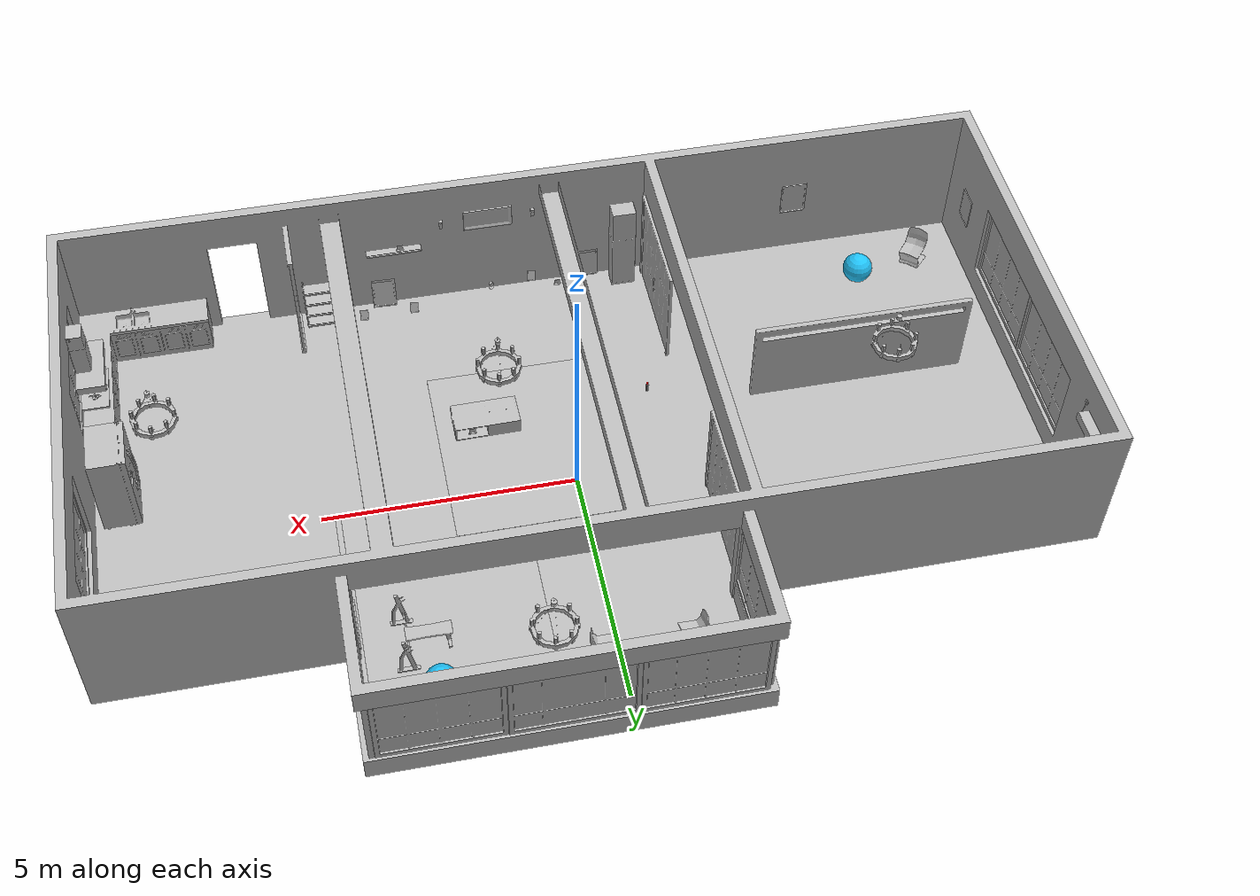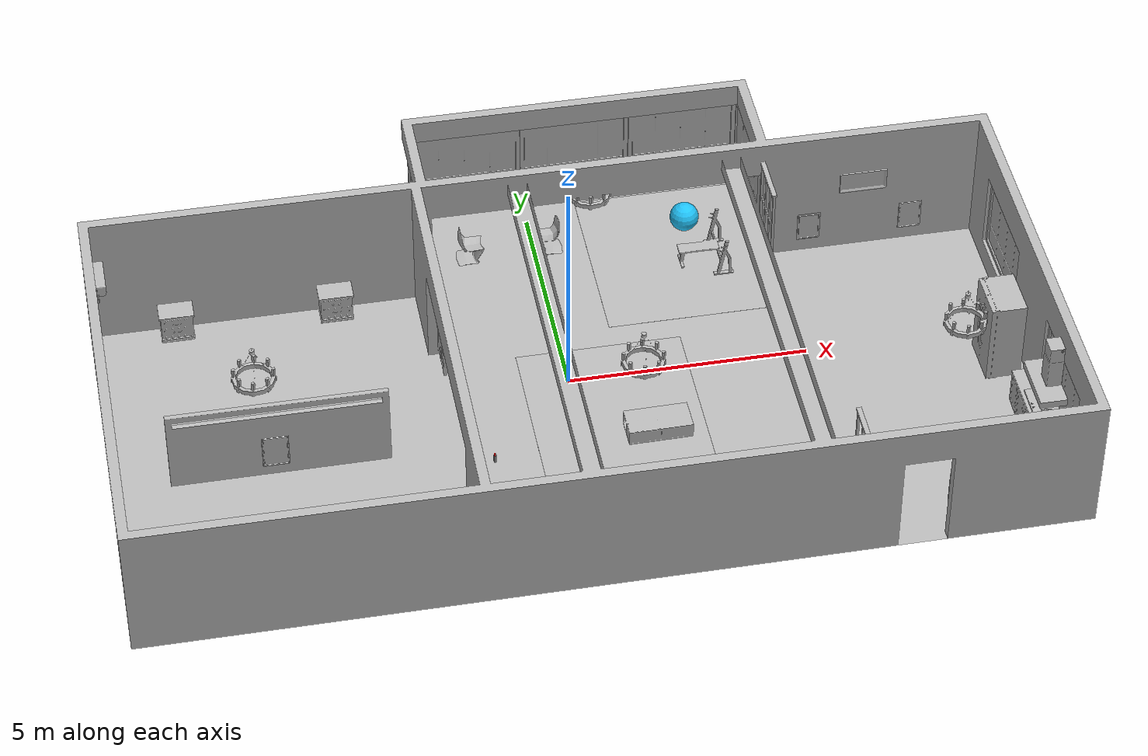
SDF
<sdf version="1.6">
 <world name="default">
  <plugin filename="gz-sim-physics-system" name="gz::sim::systems::Physics"/>
  <plugin filename="gz-sim-user-commands-system" name="gz::sim::systems::UserCommands"/>
  <plugin filename="gz-sim-scene-broadcaster-system" name="gz::sim::systems::SceneBroadcaster"/>
  <plugin filename="gz-sim-sensors-system" name="gz::sim::systems::Sensors">
   <render_engine>ogre2</render_engine>
  </plugin>
  <gravity>0 0 -9.8</gravity>
  <magnetic_field>6e-06 2.3e-05 -4.2e-05</magnetic_field>
  <atmosphere type="adiabatic"/>
  <physics name="default_physics" default="0" type="ode">
   <max_step_size>0.005</max_step_size>
   <real_time_factor>1</real_time_factor>
   <real_time_update_rate>200</real_time_update_rate>
  </physics>
  <scene>
   <ambient>0.4 0.4 0.4 1</ambient>
   <background>0.7 0.7 0.7 1</background>
   <shadows>false</shadows>
   <grid>false</grid>
   <origin_visual>false</origin_visual>
  </scene>
  <spherical_coordinates>
   <surface_model>EARTH_WGS84</surface_model>
   <latitude_deg>0</latitude_deg>
   <longitude_deg>0</longitude_deg>
   <elevation>0</elevation>
   <heading_deg>0</heading_deg>
  </spherical_coordinates>
  <include>
   <name>AirconditionerA_01_001</name>
   <static>true</static>
   <uri>model://aws_robomaker_residential_AirconditionerA_01</uri>
   <pose>-9.199410 2.411230 2.084544 0 -0 0</pose>
  </include>
  <include>
   <name>AirconditionerB_01_001</name>
   <static>true</static>
   <uri>model://aws_robomaker_residential_AirconditionerB_01</uri>
   <pose>-2.004656 -5.226610 0.003485 0 -0 0</pose>
  </include>
  <include>
   <name>Ball_01_001</name>
   <static>true</static>
   <uri>model://aws_robomaker_residential_Ball_01</uri>
   <pose>3.295503 4.225674 0.318684 0 -0 0</pose>
  </include>
  <include>
   <name>Ball_01_003</name>
   <static>true</static>
   <uri>model://aws_robomaker_residential_Ball_01</uri>
   <pose>-6.945503 -4.22174 0.318684 0 -0 0</pose>
  </include>
  <include>
   <name>NightStand_01_001</name>
   <static>true</static>
   <uri>model://aws_robomaker_residential_NightStand_01</uri>
   <pose>-7.725510 2.860420 0.005258 -0.000002 0 0</pose>
  </include>
  <include>
   <name>NightStand_01_002</name>
   <static>true</static>
   <uri>model://aws_robomaker_residential_NightStand_01</uri>
   <pose>-4.407341 2.860420 0.005256 0 0.000002 0</pose>
  </include>
  <include>
   <name>Board_01_001</name>
   <static>true</static>
   <uri>model://aws_robomaker_residential_Board_01</uri>
   <pose>2.779073 -5.392703 1.538173 0 -0 0</pose>
  </include>
  <include>
   <name>ChairD_01_001</name>
   <static>true</static>
   <uri>model://aws_robomaker_residential_ChairD_01</uri>
   <pose>-1.380775 4.104456 0 0 -0 0</pose>
  </include>
  <include>
   <name>ChairD_01_002</name>
   <static>true</static>
   <uri>model://aws_robomaker_residential_ChairD_01</uri>
   <pose>0.325214 4.104456 0 0 -0 -3.138741</pose>
  </include>
  <include>
   <name>ChairD_01_003</name>
   <static>true</static>
   <uri>model://aws_robomaker_residential_ChairD_01</uri>
   <pose>-8.270775 -4.504456 0 0 -0 0.869673</pose>
  </include>
  <include>
   <name>Chandelier_01_001</name>
   <static>true</static>
   <uri>model://aws_robomaker_residential_Chandelier_01</uri>
   <pose>1.221061 4.155740 1.295000 0 -0 0</pose>
  </include>
  <include>
   <name>Chandelier_01_002</name>
   <static>true</static>
   <uri>model://aws_robomaker_residential_Chandelier_01</uri>
   <pose>-6.451061 -0.692040 1.810000 0 -0 0</pose>
  </include>
  <include>
   <name>Chandelier_01_003</name>
   <static>true</static>
   <uri>model://aws_robomaker_residential_Chandelier_01</uri>
   <pose>7.824061 -1.59 1.7510000 0 -0 0</pose>
  </include>
  <include>
   <name>Chandelier_01_004</name>
   <static>true</static>
   <uri>model://aws_robomaker_residential_Chandelier_01</uri>
   <pose>1.221061 -1.592040 1.7873000 0 -0 0</pose>
  </include>
  <include>
   <name>Carpet_01_001</name>
   <static>true</static>
   <uri>model://aws_robomaker_residential_Carpet_01</uri>
   <pose>0.785050 -1.106647 0.001106 0 -0 0</pose>
  </include>
  <include>
   <name>Carpet_01_002</name>
   <static>true</static>
   <uri>model://aws_robomaker_residential_Carpet_01</uri>
   <pose>2.854050 3.45 0.000585 0 -0 0</pose>
  </include>
  <include>
   <name>SecurityCamera_01_001</name>
   <static>true</static>
   <uri>model://aws_robomaker_residential_SecurityCamera_01</uri>
   <pose>0.842134 -4.996294 0.495067 0 -0 -2.841039</pose>
  </include>
  <include>
   <name>CoffeeTable_01_001</name>
   <static>true</static>
   <uri>model://aws_robomaker_residential_CoffeeTable_01</uri>
   <pose>1.512301 -1.733438 0.041983 0.000000 0.000000 0.01000</pose>
  </include>
  <include>
   <name>CookingBench_01_001</name>
   <uri>model://aws_robomaker_residential_CookingBench_01</uri>
   <pose>9.038383 -3.351140 0.903610 0 -0 3.137133</pose>
   <static>true</static>
  </include>
  <include>
   <name>FitnessEquipment_01_001</name>
   <static>true</static>
   <uri>model://aws_robomaker_residential_FitnessEquipment_01</uri>
   <pose>3.484720 3.169104 0.003168 0 -0 0</pose>
  </include>
  <include>
   <name>FoldingDoor_01_001</name>
   <static>true</static>
   <uri>model://aws_robomaker_residential_FoldingDoor_01</uri>
   <pose>-2.461096 1.844219 0.041881 0 -0 0</pose>
  </include>
  <include>
   <name>FoldingDoor_01_002</name>
   <static>true</static>
   <uri>model://aws_robomaker_residential_FoldingDoor_01</uri>
   <pose>-2.461096 -4.053320 0.041881 0 -0 0</pose>
  </include>
  <include>
   <name>HouseWallB_01_001</name>
   <static>true</static>
   <uri>model://aws_robomaker_residential_HouseWallB_01</uri>
  </include>
  <include>
   <name>FloorB_01_001</name>
   <static>true</static>
   <uri>model://aws_robomaker_residential_FloorB_01</uri>
  </include>
  <include>
   <name>FoldingDoor_02_001</name>
   <static>true</static>
   <uri>model://aws_robomaker_residential_FoldingDoor_02</uri>
   <pose>4.674231 2.46451 0 0 -0 3.14159</pose>
  </include>
  <include>
   <name>FoldingDoor_02_002</name>
   <static>true</static>
   <uri>model://aws_robomaker_residential_FoldingDoor_02</uri>
   <pose>4.8912 -4.84968 0 0 -0 0</pose>
  </include>
  <include>
   <name>KitchenCabinet_01_001</name>
   <static>true</static>
   <uri>model://aws_robomaker_residential_KitchenCabinet_01</uri>
   <pose>8.002009 -3.836509 0.012068 0 -0 -3.140001</pose>
  </include>
  <include>
   <name>LightC_01_001</name>
   <static>true</static>
   <uri>model://aws_robomaker_residential_LightC_01</uri>
   <pose>1.769567 -5.4443710 2.000000 0 -0 0</pose>
  </include>
  <include>
   <name>LightC_01_002</name>
   <static>true</static>
   <uri>model://aws_robomaker_residential_LightC_01</uri>
   <pose>-0.138245 -5.4443710 2.000000 0 -0 0</pose>
  </include>
  <include>
   <name>PortraitA_01</name>
   <static>true</static>
   <uri>model://aws_robomaker_residential_PortraitA_01</uri>
   <pose>-2.712360 -4.817539 1.00000 0 -0 1.566796</pose>
  </include>
  <include>
   <name>PortraitB_01</name>
   <static>true</static>
   <uri>model://aws_robomaker_residential_PortraitB_01</uri>
   <pose>-1.279683 -5.429630 0.0 -0.076901 0 -3.116718</pose>
  </include>
  <include>
   <name>PortraitB_02</name>
   <static>true</static>
   <uri>model://aws_robomaker_residential_PortraitB_02</uri>
   <pose>5.737017 3.080310 0.300000 0 -0 0</pose>
  </include>
  <include>
   <name>PortraitB_03</name>
   <static>true</static>
   <uri>model://aws_robomaker_residential_PortraitB_03</uri>
   <pose>3.071380 -5.349366 0.005494 -0.168428 0.0 3.104232</pose>
  </include>
  <include>
   <name>PortraitA_02</name>
   <static>true</static>
   <uri>model://aws_robomaker_residential_PortraitA_02</uri>
   <pose>7.937017 3.080310 0.300000 0 -0 3.14</pose>
  </include>
  <include>
   <name>PortraitC_01</name>
   <static>true</static>
   <uri>model://aws_robomaker_residential_PortraitC_01</uri>
   <pose>-9.294904 -4.526084 1.000000 0 -0 1.554734</pose>
  </include>
  <include>
   <name>PortraitD_01</name>
   <static>true</static>
   <uri>model://aws_robomaker_residential_PortraitD_01</uri>
   <pose>0.789763 -5.478725 1.800000 0 -0 3.138531</pose>
  </include>
  <include>
   <name>PortraitD_02</name>
   <static>true</static>
   <uri>model://aws_robomaker_residential_PortraitD_02</uri>
   <pose>6.870181 3.080310 1.488439 0 -0 0</pose>
  </include>
  <include>
   <name>PortraitE_01</name>
   <static>true</static>
   <uri>model://aws_robomaker_residential_PortraitE_01</uri>
   <pose>-5.773094 -5.492466 1.000000 0 -0 3.132627</pose>
  </include>
  <include>
   <name>PortraitE_02</name>
   <static>true</static>
   <uri>model://aws_robomaker_residential_PortraitE_02</uri>
   <pose>-6.193025 -1.590208 0.3 0 -0 0.004290</pose>
  </include>
  <include>
   <name>DeskPortraitA_01</name>
   <static>true</static>
   <uri>model://aws_robomaker_residential_DeskPortraitA_01</uri>
   <pose>-0.036864 -5.110156 0.498660 0 -0 2.927784</pose>
  </include>
  <include>
   <name>DeskPortraitA_02</name>
   <static>true</static>
   <uri>model://aws_robomaker_residential_DeskPortraitA_02</uri>
   <pose>2.046082 -1.892926 0.0703880 -0.018328 -0.000441 1.576216</pose>
  </include>
  <include>
   <name>DeskPortraitD_01</name>
   <static>true</static>
   <uri>model://aws_robomaker_residential_DeskPortraitD_01</uri>
   <pose>2.645560 -5.376225 1.573738 0 -0 -3.112826</pose>
  </include>
  <include>
   <name>DeskPortraitD_02</name>
   <static>true</static>
   <uri>model://aws_robomaker_residential_DeskPortraitD_02</uri>
   <pose>-0.589211 -5.109890 0.192145 -0.000015 -0.000174 -3.112544</pose>
  </include>
  <include>
   <name>DeskPortraitD_03</name>
   <static>true</static>
   <uri>model://aws_robomaker_residential_DeskPortraitD_03</uri>
   <pose>1.826729 -1.464881 0.126208 0.000010 0.000006 -3.114380</pose>
  </include>
  <include>
   <name>DeskPortraitD_04</name>
   <static>true</static>
   <uri>model://aws_robomaker_residential_DeskPortraitD_04</uri>
   <pose>4.302132 -5.176568 0.202496 0.007118 -0.000001 3.046683</pose>
  </include>
  <include>
   <name>DeskPortraitB_01</name>
   <static>true</static>
   <uri>model://aws_robomaker_residential_DeskPortraitB_01</uri>
   <pose>3.547376 -5.083898 -0.012660 -0.336622 -0.000001 3.046741</pose>
  </include>
  <include>
   <name>DeskPortraitB_02</name>
   <static>true</static>
   <uri>model://aws_robomaker_residential_DeskPortraitB_02</uri>
   <pose>2.486270 -5.102525 -0.012660 -0.336621 0.000000 3.046798</pose>
  </include>
  <include>
   <name>Rangehood_01_001</name>
   <static>true</static>
   <uri>model://aws_robomaker_residential_Rangehood_01</uri>
   <pose>9.019794 -3.369940 1.507605 0 -0 0</pose>
  </include>
  <include>
   <name>Refrigerator_01_001</name>
   <static>true</static>
   <uri>model://aws_robomaker_residential_Refrigerator_01</uri>
   <pose>8.702731 -1.032031 0 0 -0 -1.563499</pose>
  </include>
  <include>
   <name>ShoeRack_01_001</name>
   <static>true</static>
   <uri>model://aws_robomaker_residential_ShoeRack_01</uri>
   <pose>4.297978 -5.173566 0 0 -0 0</pose>
  </include>
  <include>
   <name>RoomWall_01_001</name>
   <static>true</static>
   <uri>model://aws_robomaker_residential_RoomWall_01</uri>
   <pose>-6.097550 -1.496180 0.028124 0 -0 0</pose>
  </include>
  <include>
   <name>RoomWindow_01_001</name>
   <static>true</static>
   <uri>model://aws_robomaker_residential_RoomWindow_01</uri>
   <pose>-9.418600 -0.026285 0.502739 0 -0 0</pose>
  </include>
  <include>
   <name>RoomWindow_01_002</name>
   <static>true</static>
   <uri>model://aws_robomaker_residential_RoomWindow_01</uri>
   <pose>-9.418600 -2.374090 0.502739 0 -0 0</pose>
  </include>
  <include>
   <name>RoomWindow_01_003</name>
   <static>true</static>
   <uri>model://aws_robomaker_residential_RoomWindow_01</uri>
   <pose>9.422616 -3.373981 0.502739 0 -0 -3.136099</pose>
  </include>
  <include>
   <name>RoomWindow_01_004</name>
   <static>true</static>
   <uri>model://aws_robomaker_residential_RoomWindow_01</uri>
   <pose>9.422558 0.968520 0.496581 0 -0 -3.136099</pose>
  </include>
  <include>
   <name>RoomWindow_01_005</name>
   <static>true</static>
   <uri>model://aws_robomaker_residential_RoomWindow_01</uri>
   <pose>4.722317 4.470281 0.502739 0 -0 -3.136099</pose>
  </include>
  <include>
   <name>RoomWindow_01_006</name>
   <static>true</static>
   <uri>model://aws_robomaker_residential_RoomWindow_01</uri>
   <pose>3.488520 5.600688 0.502739 0 -0 -1.566274</pose>
  </include>
  <include>
   <name>RoomWindow_01_007</name>
   <static>true</static>
   <uri>model://aws_robomaker_residential_RoomWindow_01</uri>
   <pose>1.140949 5.600688 0.502739 0 -0 -1.566274</pose>
  </include>
  <include>
   <name>RoomWindow_01_008</name>
   <static>true</static>
   <uri>model://aws_robomaker_residential_RoomWindow_01</uri>
   <pose>-1.199340 5.600688 0.502739 0 -0 -1.566274</pose>
  </include>
  <include>
   <name>RoomWindow_01_009</name>
   <static>true</static>
   <uri>model://aws_robomaker_residential_RoomWindow_01</uri>
   <pose>-2.396624 4.387607 0.502739 0 -0 0</pose>
  </include>
  <light name="LivingRoom_CeilingLight_0" type="point">
   <pose>1.194296 4.155759 2.2 0 -0 0</pose>
   <diffuse>0.5 0.5 0.5 1</diffuse>
   <specular>0.1 0.1 0.1 1</specular>
   <attenuation>
    <range>20</range>
    <constant>0.32</constant>
    <linear>0.01</linear>
    <quadratic>0.03</quadratic>
   </attenuation>
   <cast_shadows>0</cast_shadows>
   <direction>0 0 -1</direction>
  </light>
  <light name="LivingRoom_CeilingLight_1" type="point">
   <pose>1.194296 -1.589959 2.2 0 -0 0</pose>
   <diffuse>0.5 0.5 0.5 1</diffuse>
   <specular>0.1 0.1 0.1 1</specular>
   <attenuation>
    <range>20</range>
    <constant>0.05</constant>
    <linear>0.01</linear>
    <quadratic>0.09</quadratic>
   </attenuation>
   <cast_shadows>0</cast_shadows>
   <direction>0 0 -1</direction>
  </light>
  <light name="LivingRoom_WallLight_0" type="point">
   <pose>1.76956 -5.444370 2.2 0 -0 0</pose>
   <diffuse>0.24 0.24 0.24 1</diffuse>
   <specular>0.1 0.1 0.1 1</specular>
   <attenuation>
    <range>20</range>
    <constant>0.12</constant>
    <linear>0.00</linear>
    <quadratic>0.03</quadratic>
   </attenuation>
   <direction>0 0 -1</direction>
  </light>
  <light name="LivingRoom_WallLight_1" type="point">
   <pose>-0.13826 -5.444370 2.2 0 -0 0</pose>
   <diffuse>0.24 0.24 0.24 1</diffuse>
   <specular>0.1 0.1 0.1 1</specular>
   <attenuation>
    <range>20</range>
    <constant>0.12</constant>
    <linear>0.00</linear>
    <quadratic>0.03</quadratic>
   </attenuation>
   <direction>0 0 -1</direction>
  </light>
  <light name="TV_Light_0" type="point">
   <pose>0.8269 -4.939577 1.1 0 -0 0</pose>
   <diffuse>0.31372 0.31372 0.34901 1</diffuse>
   <specular>0.1 0.1 0.1 1</specular>
   <attenuation>
    <range>3</range>
    <constant>0.10</constant>
    <linear>0.04</linear>
    <quadratic>0.50</quadratic>
   </attenuation>
   <direction>0 0 -1</direction>
  </light>
  <light name="BedRoom_Portrait_Light_0" type="spot">
   <pose>-6.190379 -1.829697 1.5587 0.3 -0 0.0</pose>
   <diffuse>0.5 0.5 0.5 1</diffuse>
   <specular>0.1 0.1 0.1 1</specular>
   <attenuation>
    <range>20</range>
    <constant>0.50</constant>
    <linear>0.01</linear>
    <quadratic>0.00</quadratic>
   </attenuation>
   <spot><inner_angle>0.6</inner_angle><outer_angle>1.0</outer_angle><falloff>1.0</falloff></spot>
   <direction>0 0 -1</direction>
  </light>
  <light name="BedRoom_CeilingLight_0" type="point">
   <pose>-6.451061 -0.692040 2.000000 0 -0 0</pose>
   <diffuse>0.5 0.5 0.5 1</diffuse>
   <specular>0.1 0.1 0.1 1</specular>
   <attenuation>
    <range>20</range>
    <constant>0.32</constant>
    <linear>0.01</linear>
    <quadratic>0.03</quadratic>
   </attenuation>
   <cast_shadows>0</cast_shadows>
   <direction>0 0 -1</direction>
  </light>
  <light name="Kitchen_CeilingLight_0" type="point">
   <pose>7.8582 -1.5905 2.280000 0 -0 0</pose>
   <diffuse>0.5 0.5 0.5 1</diffuse>
   <specular>0.1 0.1 0.1 1</specular>
   <attenuation>
    <range>20</range>
    <constant>0.3</constant>
    <linear>0.01</linear>
    <quadratic>0.01</quadratic>
   </attenuation>
   <cast_shadows>0</cast_shadows>
   <direction>0 0 -1</direction>
  </light>
  <light name="user_directional_light_1" type="directional">
   <pose>0 0 10 0 0 0</pose>
   <cast_shadows>false</cast_shadows>
   <intensity>1</intensity>
   <direction>0 0 -1</direction>
  </light>
  <model name="cylinder_stand">
   <static>true</static>
   <pose>-1.86 -2.0 0.0825 0 0 0</pose>
   <link name="link">
    <visual name="visual">
     <geometry><box><size>0.05 0.05 0.165</size></box></geometry>
     <material>
      <ambient>0.5 0.5 0.5 1</ambient>
      <diffuse>0.5 0.5 0.5 1</diffuse>
      <specular>0.1 0.1 0.1 1</specular>
     </material>
    </visual>
    <collision name="collision"><geometry><box><size>0.05 0.05 0.165</size></box></geometry></collision>
   </link>
  </model>
  <model name="red_cylinder">
   <pose>-1.86 -2.0 0.19 0 0 0</pose>
   <link name="link">
    <inertial>
     <mass>0.02</mass>
     <inertia><ixx>0.0001</ixx><ixy>0</ixy><ixz>0</ixz><iyy>0.0001</iyy><iyz>0</iyz><izz>0.0001</izz></inertia>
    </inertial>
    <visual name="visual">
     <geometry><box><size>0.03 0.03 0.05</size></box></geometry>
     <material><ambient>1 0 0 1</ambient><diffuse>1 0 0 1</diffuse><specular>0.1 0.1 0.1 1</specular></material>
    </visual>
    <collision name="collision">
     <geometry><box><size>0.03 0.03 0.05</size></box></geometry>
     <surface>
      <friction><ode><mu>1000.0</mu><mu2>1000.0</mu2></ode></friction>
      <contact><ode><kp>1000000.0</kp><kd>1.0</kd><min_depth>0.001</min_depth></ode></contact>
     </surface>
    </collision>
   </link>
  </model>
  <model name="destination_camera">
   <static>true</static>
   <pose>-1.7 -2.8 0.6 0 0.2 1.5708</pose>
   <link name="link">
    <sensor name="camera" type="camera">
     <camera>
      <horizontal_fov>1.2</horizontal_fov>
      <image><width>1280</width><height>720</height><format>R8G8B8</format></image>
      <clip><near>0.1</near><far>100</far></clip>
     </camera>
     <always_on>1</always_on>
     <update_rate>5</update_rate>
     <topic>destination_camera/image_raw</topic>
    </sensor>
   </link>
  </model>
 </world>
</sdf>

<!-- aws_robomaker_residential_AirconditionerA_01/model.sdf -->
<sdf version="1.6">
  <model name="aws_robomaker_residential_AirconditionerA_01">
    <link name="link">

      <collision name="collision">
        <geometry>
          <mesh>
            <uri>model://aws_robomaker_residential_AirconditionerA_01/meshes/aws_AirconditionerA_01_collision.DAE</uri>
            <scale>1 1 1</scale>
          </mesh>
        </geometry>
      </collision>
      <visual name="visual">
	    <geometry>
          <mesh>
            <uri>model://aws_robomaker_residential_AirconditionerA_01/meshes/aws_AirconditionerA_01_visual.DAE</uri>
          </mesh>
        </geometry>
      <meta> <layer> 1 </layer></meta>
</visual>
    </link>
	<static>1</static>
  </model>
</sdf>

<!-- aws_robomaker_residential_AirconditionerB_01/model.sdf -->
<sdf version="1.6">
  <model name="aws_robomaker_residential_AirconditionerB_01">
    <static>true</static>
    <link name="link">

      <collision name="collision">
        <geometry>
          <mesh>
            <uri>model://aws_robomaker_residential_AirconditionerB_01/meshes/aws_AirconditionerB_01_collision.DAE</uri>
            <scale>1 1 1</scale>
          </mesh>
        </geometry>
      </collision>
      <visual name="visual">
	    <geometry>
          <mesh>
            <uri>model://aws_robomaker_residential_AirconditionerB_01/meshes/aws_AirconditionerB_01_visual.DAE</uri>
          </mesh>
        </geometry>
      <meta> <layer> 1 </layer></meta>
</visual>
    </link>
  </model>
</sdf>

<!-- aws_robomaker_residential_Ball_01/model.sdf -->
<sdf version="1.6">
  <model name="aws_robomaker_residential_Ball_01">
    <static>true</static>
    <link name="link">

      <collision name="collision">

        <geometry>
          <sphere>
            <radius>0.31 </radius>
          </sphere>

        </geometry>

        <surface>
          <friction>
            <ode>
              <mu>0.85</mu>
              <mu2>0.85</mu2>
            </ode>
          </friction>

        <!-- Add some bounciness to the ball -->
          <contact>
            <ode>
              <kd>8500</kd>
              <max_vel>5.1</max_vel>
            </ode>
          </contact>
        </surface>

      </collision>
      <visual name="visual">
	    <geometry>
          <sphere>
            <radius>0.31 </radius>
          </sphere>
      </geometry>
          <material>
            <diffuse>0.12 0.76 0.97 1</diffuse>
            <ambient>0.03 0.21 0.27 1</ambient>
          </material>
      <meta> <layer> 1 </layer></meta>
</visual>
    </link>
  </model>
</sdf>

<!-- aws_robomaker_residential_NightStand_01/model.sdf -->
<sdf version="1.6">
  <model name="aws_robomaker_residential_NightStand_01">
    <link name="link">

      <collision name="collision">
        <geometry>
          <mesh>
            <uri>model://aws_robomaker_residential_NightStand_01/meshes/aws_NightStand_01_collision.DAE</uri>
            <scale>1 1 1</scale>
          </mesh>
        </geometry>
      </collision>
      <visual name="visual">
	    <geometry>
          <mesh>
            <uri>model://aws_robomaker_residential_NightStand_01/meshes/aws_NightStand_01_visual.DAE</uri>
          </mesh>
        </geometry>
      <meta> <layer> 1 </layer></meta>
</visual>
    </link>
    <static>1</static>
  </model>
</sdf>

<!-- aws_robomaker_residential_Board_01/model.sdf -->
<sdf version="1.6">
  <model name="aws_robomaker_residential_Board_01">
    <link name="link">

      <collision name="collision">
        <geometry>
          <mesh>
            <uri>model://aws_robomaker_residential_Board_01/meshes/aws_Board_01_collision.DAE</uri>
            <scale>1 1 1</scale>
          </mesh>
        </geometry>
      </collision>
      <visual name="visual">
	    <geometry>
          <mesh>
            <uri>model://aws_robomaker_residential_Board_01/meshes/aws_Board_01_visual.DAE</uri>
          </mesh>
        </geometry>
      <meta> <layer> 2 </layer></meta>
</visual>
    </link>

    <static>1</static>
  </model>
</sdf>

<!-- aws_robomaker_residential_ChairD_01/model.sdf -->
<sdf version="1.6">
  <model name="aws_robomaker_residential_ChairD_01">
    <static>true</static>
    <link name="link">

      <collision name="collision">

        <geometry>
          <mesh>
            <uri>model://aws_robomaker_residential_ChairD_01/meshes/aws_ChairD_01_collision.DAE</uri>
            <scale>1 1 1</scale>
          </mesh>
        </geometry>

      </collision>
      <visual name="visual">
	    <geometry>
          <mesh>
            <uri>model://aws_robomaker_residential_ChairD_01/meshes/aws_ChairD_01_visual.DAE</uri>
          </mesh>
        </geometry>
      <meta> <layer> 1 </layer></meta>
</visual>
    </link>
  </model>
</sdf>

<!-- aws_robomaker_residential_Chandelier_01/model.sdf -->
<sdf version="1.6">
  <model name="aws_robomaker_residential_Chandelier_01">
    <link name="link">

      <collision name="collision">
        <geometry>
          <mesh>
            <uri>model://aws_robomaker_residential_Chandelier_01/meshes/aws_Chandelier_01_collision.DAE</uri>
            <scale>1 1 1</scale>
          </mesh>
        </geometry>
      </collision>
      <visual name="visual">
	    <geometry>
          <mesh>
            <uri>model://aws_robomaker_residential_Chandelier_01/meshes/aws_Chandelier_01_visual.DAE</uri>
          </mesh>
        </geometry>
      <meta> <layer> 2 </layer></meta>
</visual>
    </link>
	<static>1</static>
  </model>
</sdf>

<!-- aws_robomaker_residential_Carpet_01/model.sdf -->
<sdf version="1.6">
  <model name="aws_robomaker_residential_Carpet_01">
    <link name="link">

      <collision name="collision">

        <geometry>
          <mesh>
            <uri>model://aws_robomaker_residential_Carpet_01/meshes/aws_Carpet_01_collision.DAE</uri>
            <scale>1 1 0.95</scale>
          </mesh>
        </geometry>

        <surface>
          <friction>
            <ode>
              <mu>100</mu>
              <mu2>50</mu2>
            </ode>
          </friction>
          <contact>
            <ode>
            </ode>
          </contact>
        </surface>

        <pose>0 0 -0.01 0 0 0 </pose>
      </collision>

      <visual name="visual">
	    <geometry>
          <mesh>
            <uri>model://aws_robomaker_residential_Carpet_01/meshes/aws_Carpet_01_visual.DAE</uri>
          </mesh>
        </geometry>
      <meta> <layer> 1 </layer></meta>
</visual>
    </link>

    <static>1</static>

  </model>
</sdf>

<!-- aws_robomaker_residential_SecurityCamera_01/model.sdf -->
<sdf version="1.6">
  <model name="aws_robomaker_residential_SecurityCamera_01">
    <static>true</static>
    <link name="link">

      <collision name="collision">
        <geometry>
          <mesh>
            <uri>model://aws_robomaker_residential_SecurityCamera_01/meshes/aws_SecurityCamera_01_collision.DAE</uri>
            <scale>1 1 1</scale>
          </mesh>
        </geometry>
      </collision>
      <visual name="visual">
	    <geometry>
          <mesh>
            <uri>model://aws_robomaker_residential_SecurityCamera_01/meshes/aws_SecurityCamera_01_visual.DAE</uri>
          </mesh>
        </geometry>
        <meta>
          <layer>2</layer>
        </meta>
      </visual>
    </link>
  </model>
</sdf>

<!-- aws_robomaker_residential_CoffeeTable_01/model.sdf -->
<sdf version="1.6">
  <model name="aws_robomaker_residential_CoffeeTable_01">
    <link name="link">

      <collision name="collision">
        <geometry>
          <mesh>
            <uri>model://aws_robomaker_residential_CoffeeTable_01/meshes/aws_CoffeeTable_01_collision.DAE</uri>
            <scale>1 1 1</scale>
          </mesh>
        </geometry>

        <surface>
          <contact>
            <ode>
              <max_vel>0.01</max_vel>
            </ode>
          </contact>
         </surface>
      </collision>

      <visual name="visual">
	    <geometry>
          <mesh>
            <uri>model://aws_robomaker_residential_CoffeeTable_01/meshes/aws_CoffeeTable_01_visual.DAE</uri>
          </mesh>
        </geometry>
      <meta> <layer> 1 </layer></meta>
</visual>
    </link>
    <static>1</static>
  </model>
</sdf>

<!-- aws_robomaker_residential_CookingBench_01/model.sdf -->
<sdf version="1.6">
  <model name="aws_robomaker_residential_CookingBench_01">
    <static>true</static>
    <link name="link">

      <collision name="collision">
        <geometry>
          <mesh>
            <uri>model://aws_robomaker_residential_CookingBench_01/meshes/aws_CookingBench_01_collision.DAE</uri>
            <scale>1 1 1</scale>
          </mesh>
        </geometry>
      </collision>
      <visual name="visual">
	    <geometry>
          <mesh>
            <uri>model://aws_robomaker_residential_CookingBench_01/meshes/aws_CookingBench_01_visual.DAE</uri>
          </mesh>
        </geometry>
      <meta> <layer> 1 </layer></meta>
</visual>
    </link>
  </model>
</sdf>

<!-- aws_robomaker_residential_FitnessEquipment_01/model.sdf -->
<sdf version="1.6">
  <model name="aws_robomaker_residential_FitnessEquipment_01">
    <link name="link">

      <collision name="collision">
        <geometry>
          <mesh>
            <uri>model://aws_robomaker_residential_FitnessEquipment_01/meshes/aws_FitnessEquipment_01_collision.DAE</uri>
            <scale>1 1 1</scale>
          </mesh>
        </geometry>
      </collision>
      <visual name="visual">
	    <geometry>
          <mesh>
            <uri>model://aws_robomaker_residential_FitnessEquipment_01/meshes/aws_FitnessEquipment_01_visual.DAE</uri>
          </mesh>
        </geometry>
      <meta> <layer> 1 </layer></meta>
</visual>
    </link>
  <static>1</static>
  </model>
</sdf>

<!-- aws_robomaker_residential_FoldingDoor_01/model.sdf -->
<sdf version="1.6">
  <model name="aws_robomaker_residential_FoldingDoor_01">
    <link name="link">

      <collision name="collision">
        <geometry>
          <mesh>
            <uri>model://aws_robomaker_residential_FoldingDoor_01/meshes/aws_FoldingDoor_01_collision.DAE</uri>
            <scale>1 1 1</scale>
          </mesh>
        </geometry>
      </collision>
      <visual name="visual">
	    <geometry>
          <mesh>
            <uri>model://aws_robomaker_residential_FoldingDoor_01/meshes/aws_FoldingDoor_01_visual.DAE</uri>
          </mesh>
        </geometry>
      <meta> <layer> 2 </layer></meta>
</visual>
    </link>
	<static>1</static>
  </model>
</sdf>

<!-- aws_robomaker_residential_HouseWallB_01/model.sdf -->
<sdf version="1.6">
  <model name="aws_robomaker_residential_HouseWallB_01">
    <link name="link">

      <collision name="collision">
        <geometry>
          <mesh>
            <uri>model://aws_robomaker_residential_HouseWallB_01/meshes/aws_HouseWallB_01_collision.DAE</uri>
            <scale>1 1 1</scale>
          </mesh>
        </geometry>
      </collision>
      <visual name="visual">
	    <geometry>
          <mesh>
            <uri>model://aws_robomaker_residential_HouseWallB_01/meshes/aws_HouseWallB_01_visual.DAE</uri>
          </mesh>
        </geometry>
      <meta> <layer> 2 </layer></meta>
</visual>
    </link>
<static>1</static>
  </model>
</sdf>

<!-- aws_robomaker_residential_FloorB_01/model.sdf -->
<sdf version="1.6">
  <model name="aws_robomaker_residential_FloorB_01">
    <link name="link">

      <collision name="collision">
        <geometry>
          <mesh>
            <uri>model://aws_robomaker_residential_FloorB_01/meshes/aws_FloorB_01_collision.DAE</uri>
            <scale>1 1 0.9</scale>
          </mesh>
        </geometry>

        <surface>
          <friction>
            <ode>
              <mu>100</mu>
              <mu2>50</mu2>
            </ode>
          </friction>
        </surface>
      </collision>

      <visual name="visual">
	    <geometry>
          <mesh>
            <uri>model://aws_robomaker_residential_FloorB_01/meshes/aws_FloorB_01_visual.DAE</uri>
          </mesh>
        </geometry>
      <meta> <layer> 1 </layer></meta>
</visual>
    </link>

	<static>1</static>
  </model>
</sdf>

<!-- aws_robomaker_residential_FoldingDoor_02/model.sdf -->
<sdf version="1.6">
  <model name="aws_robomaker_residential_FoldingDoor_02">
    <link name="link">

      <collision name="collision">
        <geometry>
          <mesh>
            <uri>model://aws_robomaker_residential_FoldingDoor_02/meshes/aws_FoldingDoor_02_collision.DAE</uri>
            <scale>1 1 1</scale>
          </mesh>
        </geometry>
      </collision>
      <visual name="visual">
	    <geometry>
          <mesh>
            <uri>model://aws_robomaker_residential_FoldingDoor_02/meshes/aws_FoldingDoor_02_visual.DAE</uri>
          </mesh>
        </geometry>
      <meta> <layer> 2 </layer></meta>
</visual>
    </link>
<static>1</static>
  </model>
</sdf>

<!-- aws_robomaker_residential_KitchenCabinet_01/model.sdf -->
<sdf version="1.6">
  <model name="aws_robomaker_residential_KitchenCabinet_01">
    <link name="link">

      <collision name="collision">
        <laser_retro>0</laser_retro>
        <max_contacts>10</max_contacts>
        <geometry>
          <mesh>
            <uri>model://aws_robomaker_residential_KitchenCabinet_01/meshes/aws_KitchenCabinet_01_collision.DAE</uri>
            <scale>1 1 1</scale>
          </mesh>
        </geometry>
      </collision>
      <visual name="visual">
	    <geometry>
          <mesh>
            <uri>model://aws_robomaker_residential_KitchenCabinet_01/meshes/aws_KitchenCabinet_01_visual.DAE</uri>
          </mesh>
        </geometry>
      <meta> <layer> 1 </layer></meta>
</visual>
    </link>

    <static>1</static>
  </model>
</sdf>

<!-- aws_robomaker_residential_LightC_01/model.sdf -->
<sdf version="1.6">
  <model name="aws_robomaker_residential_LightC_01">
    <link name="link">

      <collision name="collision">
        <geometry>
          <mesh>
            <uri>model://aws_robomaker_residential_LightC_01/meshes/aws_LightC_01_collision.DAE</uri>
            <scale>1 1 1</scale>
          </mesh>
        </geometry>
      </collision>
      <visual name="visual">
	    <geometry>
          <mesh>
            <uri>model://aws_robomaker_residential_LightC_01/meshes/aws_LightC_01_visual.DAE</uri>
          </mesh>
        </geometry>
      <meta> <layer> 2 </layer></meta>
</visual>
    </link>
	<static>1</static>
  </model>
</sdf>

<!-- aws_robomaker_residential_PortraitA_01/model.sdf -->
<sdf version="1.6">
  <model name="aws_robomaker_residential_PortraitA_01">
    <link name="link">

      <collision name="collision">
        <geometry>
          <mesh>
            <uri>model://aws_robomaker_residential_PortraitA_01/meshes/aws_PortraitA_01_collision.DAE</uri>
            <scale>1 1 1</scale>
          </mesh>
        </geometry>
      </collision>
      <visual name="visual">
	    <geometry>
          <mesh>
            <uri>model://aws_robomaker_residential_PortraitA_01/meshes/aws_PortraitA_01_visual.DAE</uri>
          </mesh>
        </geometry>
      <meta> <layer> 2 </layer></meta>
</visual>
    </link>
	<static>1</static>
  </model>
</sdf>

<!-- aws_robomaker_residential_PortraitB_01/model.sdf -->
<sdf version="1.6">
  <model name="aws_robomaker_residential_PortraitB_01">
    <link name="link">

      <collision name="collision">
        <geometry>
          <mesh>
            <uri>model://aws_robomaker_residential_PortraitB_01/meshes/aws_PortraitB_01_collision.DAE</uri>
            <scale>1 1 1</scale>
          </mesh>
        </geometry>
      </collision>
      <visual name="visual">
	    <geometry>
          <mesh>
            <uri>model://aws_robomaker_residential_PortraitB_01/meshes/aws_PortraitB_01_visual.DAE</uri>
          </mesh>
        </geometry>
      <meta> <layer> 2 </layer></meta>
</visual>
    </link>
	<static>1</static>
  </model>
</sdf>

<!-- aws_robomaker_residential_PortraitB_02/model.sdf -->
<sdf version="1.6">
  <model name="aws_robomaker_residential_PortraitB_02">
    <link name="link">

      <collision name="collision">
        <geometry>
          <mesh>
            <uri>model://aws_robomaker_residential_PortraitB_02/meshes/aws_PortraitB_01_collision.DAE</uri>
            <scale>1 1 1</scale>
          </mesh>
        </geometry>
      </collision>
      <visual name="visual">
	    <geometry>
          <mesh>
            <uri>model://aws_robomaker_residential_PortraitB_02/meshes/aws_PortraitB_01_visual.DAE</uri>
          </mesh>
        </geometry>
      <meta> <layer> 2 </layer></meta>
</visual>
    </link>
	<static>1</static>
  </model>
</sdf>

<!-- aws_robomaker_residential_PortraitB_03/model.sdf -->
<sdf version="1.6">
  <model name="aws_robomaker_residential_PortraitB_03">
    <link name="link">

      <collision name="collision">
        <geometry>
          <mesh>
            <uri>model://aws_robomaker_residential_PortraitB_03/meshes/aws_PortraitB_01_collision.DAE</uri>
            <scale>1 1 1</scale>
          </mesh>
        </geometry>
      </collision>
      <visual name="visual">
	    <geometry>
          <mesh>
            <uri>model://aws_robomaker_residential_PortraitB_03/meshes/aws_PortraitB_01_visual.DAE</uri>
          </mesh>
        </geometry>
      <meta> <layer> 2 </layer></meta>
</visual>
    </link>
	<static>1</static>
  </model>
</sdf>

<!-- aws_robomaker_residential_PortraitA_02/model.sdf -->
<sdf version="1.6">
  <model name="aws_robomaker_residential_PortraitA_02">
    <link name="link">

      <collision name="collision">
        <geometry>
          <mesh>
            <uri>model://aws_robomaker_residential_PortraitA_02/meshes/aws_PortraitA_01_collision.DAE</uri>
            <scale>1 1 1</scale>
          </mesh>
        </geometry>
      </collision>
      <visual name="visual">
	    <geometry>
          <mesh>
            <uri>model://aws_robomaker_residential_PortraitA_02/meshes/aws_PortraitA_01_visual.DAE</uri>
          </mesh>
        </geometry>
      <meta> <layer> 2 </layer></meta>
</visual>
    </link>
	<static>1</static>
  </model>
</sdf>

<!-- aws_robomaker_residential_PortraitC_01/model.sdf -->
<sdf version="1.6">
  <model name="aws_robomaker_residential_PortraitC_01">
    <link name="link">

      <collision name="collision">
        <geometry>
          <mesh>
            <uri>model://aws_robomaker_residential_PortraitC_01/meshes/aws_PortraitC_01_collision.DAE</uri>
            <scale>1 1 1</scale>
          </mesh>
        </geometry>
      </collision>
      <visual name="visual">
	    <geometry>
          <mesh>
            <uri>model://aws_robomaker_residential_PortraitC_01/meshes/aws_PortraitC_01_visual.DAE</uri>
          </mesh>
        </geometry>
      <meta> <layer> 2 </layer></meta>
</visual>
    </link>
	<static>1</static>
  </model>
</sdf>

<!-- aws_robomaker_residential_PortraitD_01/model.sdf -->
<sdf version="1.6">
  <model name="aws_robomaker_residential_PortraitD_01">
    <link name="link">

      <collision name="collision">
        <geometry>
          <mesh>
            <uri>model://aws_robomaker_residential_PortraitD_01/meshes/aws_PortraitD_01_collision.DAE</uri>
            <scale>1 1 1</scale>
          </mesh>
        </geometry>

      </collision>

      <visual name="visual">
	    <geometry>
          <mesh>
            <uri>model://aws_robomaker_residential_PortraitD_01/meshes/aws_PortraitD_01_visual.DAE</uri>
          </mesh>
        </geometry>
      <meta> <layer> 2 </layer></meta>
</visual>
    </link>
	<static>1</static>
  </model>
</sdf>

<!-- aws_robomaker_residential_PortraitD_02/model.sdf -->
<sdf version="1.6">
  <model name="aws_robomaker_residential_PortraitD_02">
    <link name="link">

      <collision name="collision">
        <geometry>
          <mesh>
            <uri>model://aws_robomaker_residential_PortraitD_02/meshes/aws_PortraitD_01_collision.DAE</uri>
            <scale>1 1 1</scale>
          </mesh>
        </geometry>

      </collision>

      <visual name="visual">
	    <geometry>
          <mesh>
            <uri>model://aws_robomaker_residential_PortraitD_02/meshes/aws_PortraitD_01_visual.DAE</uri>
          </mesh>
        </geometry>
      <meta> <layer> 2 </layer></meta>
</visual>
    </link>
	<static>1</static>
  </model>
</sdf>

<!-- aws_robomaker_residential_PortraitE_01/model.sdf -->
<sdf version="1.6">
  <model name="aws_robomaker_residential_PortraitE_01">
    <link name="link">

      <collision name="collision">
        <geometry>
          <mesh>
            <uri>model://aws_robomaker_residential_PortraitE_01/meshes/aws_PortraitE_01_collision.DAE</uri>
            <scale>1 1 1</scale>
          </mesh>
        </geometry>
      </collision>
      <visual name="visual">
	    <geometry>
          <mesh>
            <uri>model://aws_robomaker_residential_PortraitE_01/meshes/aws_PortraitE_01_visual.DAE</uri>
          </mesh>
        </geometry>
      <meta> <layer> 2 </layer></meta>
</visual>
    </link>
	<static>1</static>
  </model>
</sdf>

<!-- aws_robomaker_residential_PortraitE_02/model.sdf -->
<sdf version="1.6">
  <model name="aws_robomaker_residential_PortraitE_02">
    <link name="link">

      <collision name="collision">
        <geometry>
          <mesh>
            <uri>model://aws_robomaker_residential_PortraitE_02/meshes/aws_PortraitE_01_collision.DAE</uri>
            <scale>1 1 1</scale>
          </mesh>
        </geometry>
      </collision>
      <visual name="visual">
	    <geometry>
          <mesh>
            <uri>model://aws_robomaker_residential_PortraitE_02/meshes/aws_PortraitE_01_visual.DAE</uri>
          </mesh>
        </geometry>
      <meta> <layer> 2 </layer></meta>
</visual>
    </link>
	<static>1</static>
  </model>
</sdf>

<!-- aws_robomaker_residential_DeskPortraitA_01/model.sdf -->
<sdf version="1.6">
  <model name="aws_robomaker_residential_DeskPortraitA_01">
    <static>true</static>
    <link name="link">

      <collision name="collision">
        <geometry>
          <mesh>
            <uri>model://aws_robomaker_residential_DeskPortraitA_01/meshes/aws_DeskPortraitA_01_collision.DAE</uri>
            <scale>1 1 1</scale>
          </mesh>
        </geometry>
      </collision>

      <visual name="visual">
	    <geometry>
          <mesh>
            <uri>model://aws_robomaker_residential_DeskPortraitA_01/meshes/aws_DeskPortraitA_01_visual.DAE</uri>
          </mesh>
        </geometry>
      <meta> <layer> 1 </layer></meta>
</visual>
    </link>
  </model>
</sdf>

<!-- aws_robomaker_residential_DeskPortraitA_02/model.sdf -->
<sdf version="1.6">
  <model name="aws_robomaker_residential_DeskPortraitA_02">
    <static>true</static>
    <link name="link">

      <collision name="collision">
        <geometry>
          <mesh>
            <uri>model://aws_robomaker_residential_DeskPortraitA_02/meshes/aws_DeskPortraitA_01_collision.DAE</uri>
            <scale>1 1 1</scale>
          </mesh>
        </geometry>
      </collision>

      <visual name="visual">
	    <geometry>
          <mesh>
            <uri>model://aws_robomaker_residential_DeskPortraitA_02/meshes/aws_DeskPortraitA_01_visual.DAE</uri>
          </mesh>
        </geometry>
      <meta> <layer> 1 </layer></meta>
</visual>
    </link>
  </model>
</sdf>

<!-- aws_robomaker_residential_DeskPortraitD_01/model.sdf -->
<sdf version="1.6">
  <model name="aws_robomaker_residential_DeskPortraitD_01">
    <static>true</static>
    <link name="link">

      <collision name="collision">
        <geometry>
          <mesh>
            <uri>model://aws_robomaker_residential_DeskPortraitD_01/meshes/aws_DeskPortraitD_01_collision.DAE</uri>
            <scale>1 1 1</scale>
          </mesh>
        </geometry>

        <surface>
          <friction>
            <ode>
              <mu>0.7</mu>
              <mu2>0.7</mu2>
            </ode>
          </friction>

          <contact>
            <ode>
              <kd>28500</kd>
            </ode>
          </contact>

        </surface>

      </collision>

      <visual name="visual">
	    <geometry>
          <mesh>
            <uri>model://aws_robomaker_residential_DeskPortraitD_01/meshes/aws_DeskPortraitD_01_visual.DAE</uri>
          </mesh>
        </geometry>
      <meta> <layer> 1 </layer></meta>
</visual>
    </link>
  </model>
</sdf>

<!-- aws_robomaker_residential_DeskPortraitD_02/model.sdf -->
<sdf version="1.6">
  <model name="aws_robomaker_residential_DeskPortraitD_02">
    <static>true</static>
    <link name="link">

      <collision name="collision">
        <geometry>
          <mesh>
            <uri>model://aws_robomaker_residential_DeskPortraitD_02/meshes/aws_DeskPortraitD_01_collision.DAE</uri>
            <scale>1 1 1</scale>
          </mesh>
        </geometry>

        <surface>
          <friction>
            <ode>
              <mu>0.7</mu>
              <mu2>0.7</mu2>
            </ode>
          </friction>

          <contact>
            <ode>
              <kd>28500</kd>
            </ode>
          </contact>

        </surface>

      </collision>

      <visual name="visual">
	    <geometry>
          <mesh>
            <uri>model://aws_robomaker_residential_DeskPortraitD_02/meshes/aws_DeskPortraitD_01_visual.DAE</uri>
          </mesh>
        </geometry>
      <meta> <layer> 1 </layer></meta>
</visual>
    </link>
  </model>
</sdf>

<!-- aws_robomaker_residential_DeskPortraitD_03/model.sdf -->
<sdf version="1.6">
  <model name="aws_robomaker_residential_DeskPortraitD_03">
    <static>true</static>
    <link name="link">

      <collision name="collision">
        <geometry>
          <mesh>
            <uri>model://aws_robomaker_residential_DeskPortraitD_03/meshes/aws_DeskPortraitD_01_collision.DAE</uri>
            <scale>1 1 1</scale>
          </mesh>
        </geometry>

        <surface>
          <friction>
            <ode>
              <mu>0.7</mu>
              <mu2>0.7</mu2>
            </ode>
          </friction>

          <contact>
            <ode>
              <kd>28500</kd>
            </ode>
          </contact>

        </surface>

      </collision>

      <visual name="visual">
	    <geometry>
          <mesh>
            <uri>model://aws_robomaker_residential_DeskPortraitD_03/meshes/aws_DeskPortraitD_01_visual.DAE</uri>
          </mesh>
        </geometry>
      <meta> <layer> 1 </layer></meta>
</visual>
    </link>
  </model>
</sdf>

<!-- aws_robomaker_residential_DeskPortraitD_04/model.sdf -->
<sdf version="1.6">
  <model name="aws_robomaker_residential_DeskPortraitD_04">
    <static>true</static>
    <link name="link">

      <collision name="collision">
        <geometry>
          <mesh>
            <uri>model://aws_robomaker_residential_DeskPortraitD_04/meshes/aws_DeskPortraitD_01_collision.DAE</uri>
            <scale>1 1 1</scale>
          </mesh>
        </geometry>

        <surface>
          <friction>
            <ode>
              <mu>0.7</mu>
              <mu2>0.7</mu2>
            </ode>
          </friction>

          <contact>
            <ode>
              <kd>28500</kd>
            </ode>
          </contact>

        </surface>

      </collision>

      <visual name="visual">
	    <geometry>
          <mesh>
            <uri>model://aws_robomaker_residential_DeskPortraitD_04/meshes/aws_DeskPortraitD_01_visual.DAE</uri>
          </mesh>
        </geometry>
      <meta> <layer> 1 </layer></meta>
</visual>
    </link>
  </model>
</sdf>

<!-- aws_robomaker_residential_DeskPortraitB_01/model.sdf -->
<sdf version="1.6">
  <model name="aws_robomaker_residential_DeskPortraitB_01">
    <static>true</static>
    <link name="link">

      <collision name="collision">
        <geometry>
          <mesh>
            <uri>model://aws_robomaker_residential_DeskPortraitB_01/meshes/aws_DeskPortraitB_01_collision.DAE</uri>
            <scale>1 1 1</scale>
          </mesh>
        </geometry>
      </collision>

      <visual name="visual">
	    <geometry>
          <mesh>
            <uri>model://aws_robomaker_residential_DeskPortraitB_01/meshes/aws_DeskPortraitB_01_visual.DAE</uri>
          </mesh>
        </geometry>
      <meta> <layer> 1 </layer></meta>
</visual>
    </link>
  </model>
</sdf>

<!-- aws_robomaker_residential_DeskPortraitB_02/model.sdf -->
<sdf version="1.6">
  <model name="aws_robomaker_residential_DeskPortraitB_02">
    <static>true</static>
    <link name="link">

      <collision name="collision">
        <geometry>
          <mesh>
            <uri>model://aws_robomaker_residential_DeskPortraitB_02/meshes/aws_DeskPortraitB_01_collision.DAE</uri>
            <scale>1 1 1</scale>
          </mesh>
        </geometry>
      </collision>

      <visual name="visual">
	    <geometry>
          <mesh>
            <uri>model://aws_robomaker_residential_DeskPortraitB_02/meshes/aws_DeskPortraitB_01_visual.DAE</uri>
          </mesh>
        </geometry>
      <meta> <layer> 1 </layer></meta>
</visual>
    </link>
  </model>
</sdf>

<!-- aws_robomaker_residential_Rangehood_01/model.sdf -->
<sdf version="1.6">
  <model name="aws_robomaker_residential_Rangehood_01">
    <link name="link">

      <collision name="collision">
        <geometry>
          <mesh>
            <uri>model://aws_robomaker_residential_Rangehood_01/meshes/aws_Rangehood_01_collision.DAE</uri>
            <scale>1 1 1</scale>
          </mesh>
        </geometry>
      </collision>
      <visual name="visual">
	    <geometry>
          <mesh>
            <uri>model://aws_robomaker_residential_Rangehood_01/meshes/aws_Rangehood_01_visual.DAE</uri>
          </mesh>
        </geometry>
      <meta> <layer> 2 </layer></meta>
</visual>
    </link>
	<static>1</static>
  </model>
</sdf>

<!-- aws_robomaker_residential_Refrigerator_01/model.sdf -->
<sdf version="1.6">
  <model name="aws_robomaker_residential_Refrigerator_01">
    <link name="link">

      <collision name="collision">
        <geometry>
          <mesh>
            <uri>model://aws_robomaker_residential_Refrigerator_01/meshes/aws_Refrigerator_01_collision.DAE</uri>
            <scale>1 1 1</scale>
          </mesh>
        </geometry>
      </collision>
      <visual name="visual">
	    <geometry>
          <mesh>
            <uri>model://aws_robomaker_residential_Refrigerator_01/meshes/aws_Refrigerator_01_visual.DAE</uri>
          </mesh>
        </geometry>
      <meta> <layer> 1 </layer></meta>
</visual>
    </link>
    <static>1</static>
  </model>
</sdf>

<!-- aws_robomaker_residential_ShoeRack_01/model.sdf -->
<sdf version="1.6">
  <model name="aws_robomaker_residential_ShoeRack_01">
    <static>true</static>
    <link name="link">

      <collision name="collision">

        <geometry>
          <mesh>
            <uri>model://aws_robomaker_residential_ShoeRack_01/meshes/aws_ShoeRack_01_collision.DAE</uri>
            <scale>1 1 1</scale>
          </mesh>
        </geometry>

        <surface>
          <friction>
            <ode>
              <mu>0.2</mu>
              <mu2>0.2</mu2>
            </ode>
          </friction>

          <contact>
            <ode>
              <kd>2500</kd>
            </ode>
          </contact>

        </surface>

      </collision>

      <visual name="visual">
	    <geometry>
          <mesh>
            <uri>model://aws_robomaker_residential_ShoeRack_01/meshes/aws_ShoeRack_01_visual.DAE</uri>
          </mesh>
        </geometry>
      <meta> <layer> 1 </layer></meta>
</visual>

    </link>
  </model>
</sdf>

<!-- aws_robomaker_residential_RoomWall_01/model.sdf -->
<sdf version="1.6">
  <model name="aws_robomaker_residential_RoomWall_01">
    <link name="link">

      <collision name="collision">
        <geometry>
          <mesh>
            <uri>model://aws_robomaker_residential_RoomWall_01/meshes/aws_RoomWall_01_collision.DAE</uri>
            <scale>1 1 1</scale>
          </mesh>
        </geometry>
      </collision>
      <visual name="visual">
	    <geometry>
          <mesh>
            <uri>model://aws_robomaker_residential_RoomWall_01/meshes/aws_RoomWall_01_visual.DAE</uri>
          </mesh>
        </geometry>
      <meta> <layer> 2 </layer></meta>
</visual>
    </link>
  <static>1</static>
  </model>
</sdf>

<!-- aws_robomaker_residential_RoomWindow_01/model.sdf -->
<sdf version="1.6">
  <model name="aws_robomaker_residential_RoomWindow_01">
    <link name="link">

      <collision name="collision">
        <geometry>
          <mesh>
            <uri>model://aws_robomaker_residential_RoomWindow_01/meshes/aws_RoomWindow_01_collision.DAE</uri>
            <scale>1 1 1</scale>
          </mesh>
        </geometry>
      </collision>
      <visual name="visual">
	    <geometry>
          <mesh>
            <uri>model://aws_robomaker_residential_RoomWindow_01/meshes/aws_RoomWindow_01_visual.DAE</uri>
          </mesh>
        </geometry>
      <meta> <layer> 2 </layer></meta>
</visual>
    </link>
	<static>1</static>
  </model>
</sdf>
